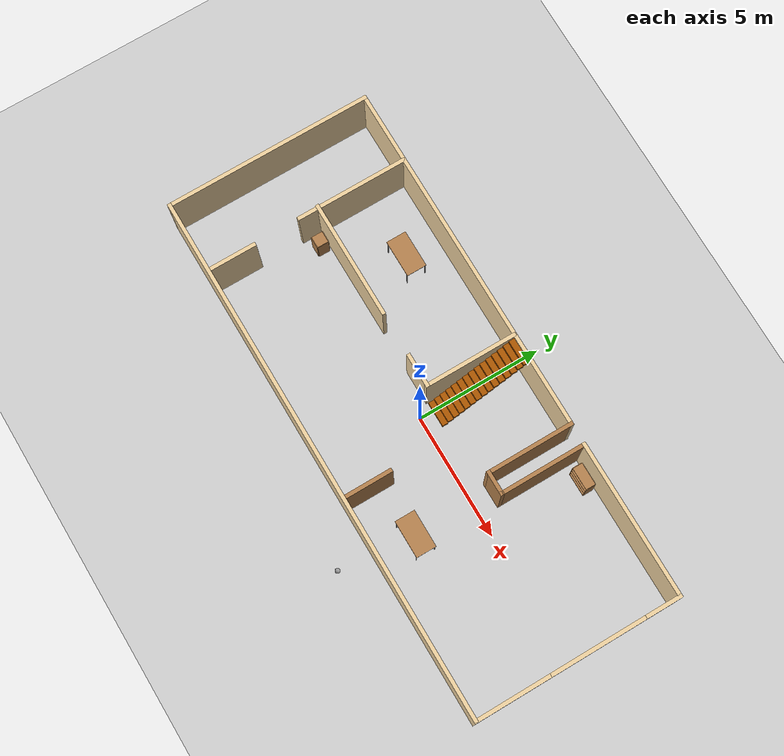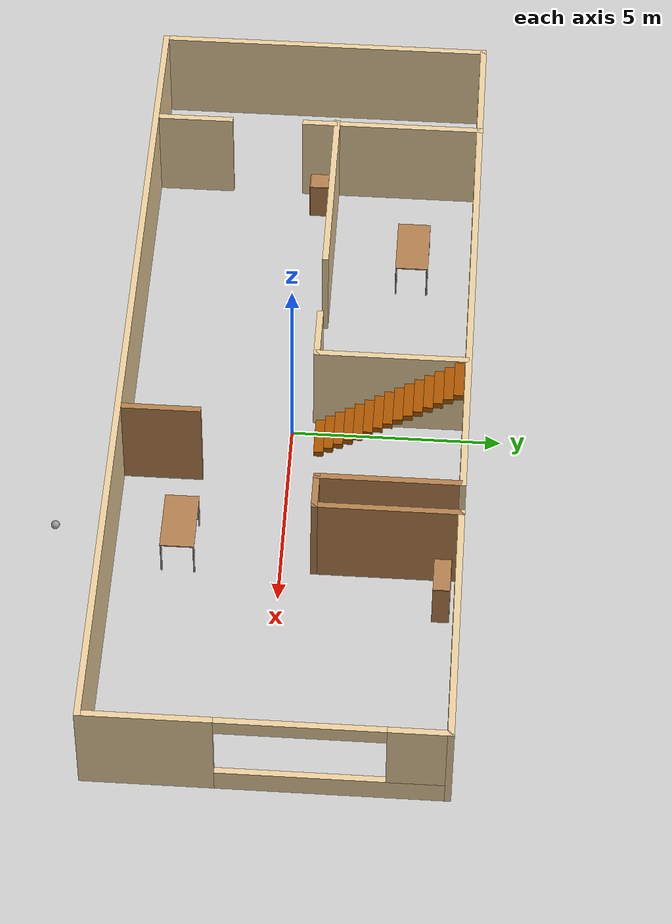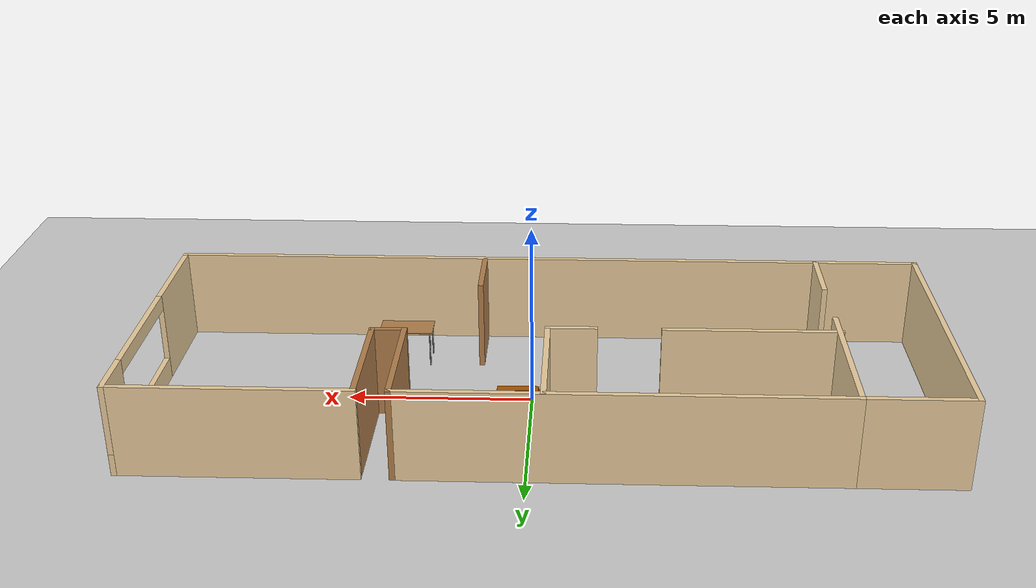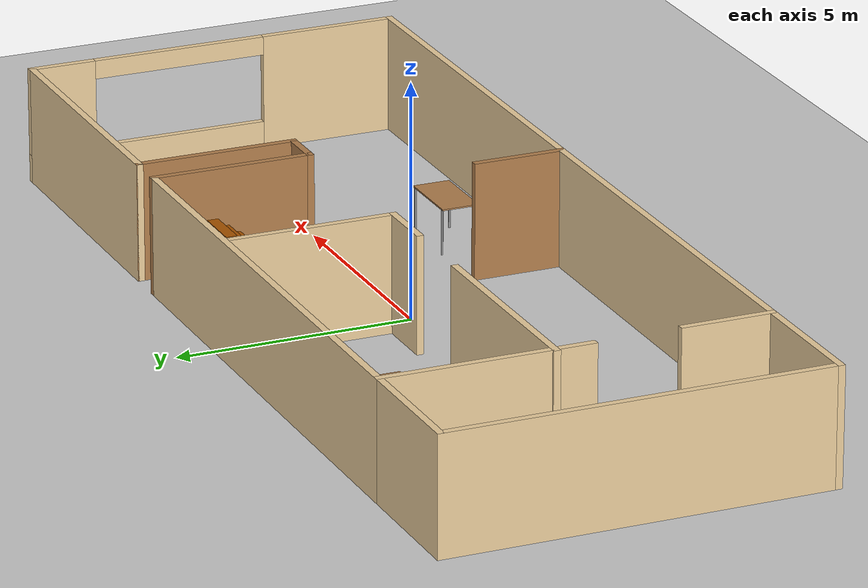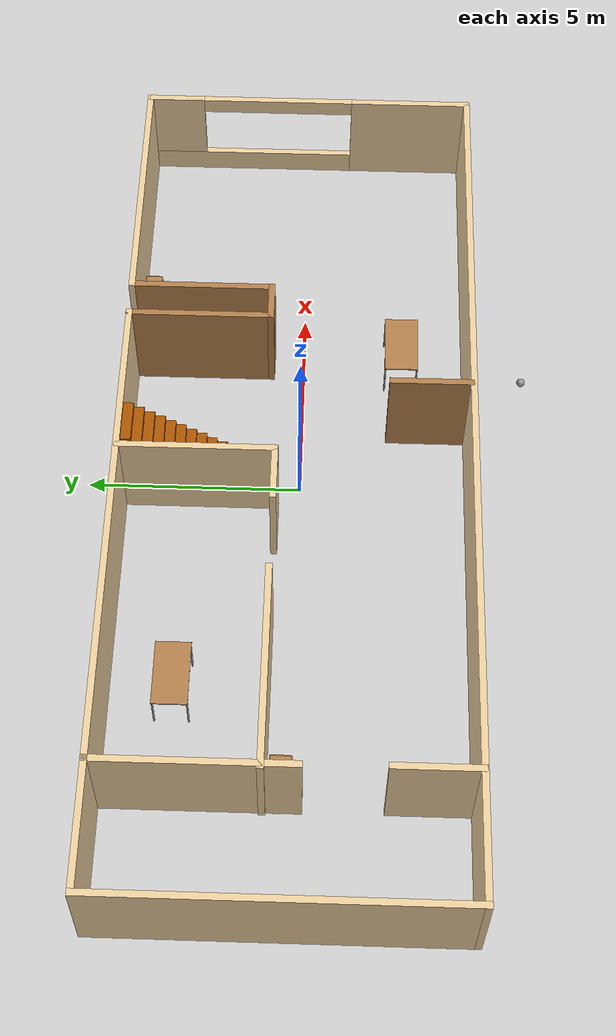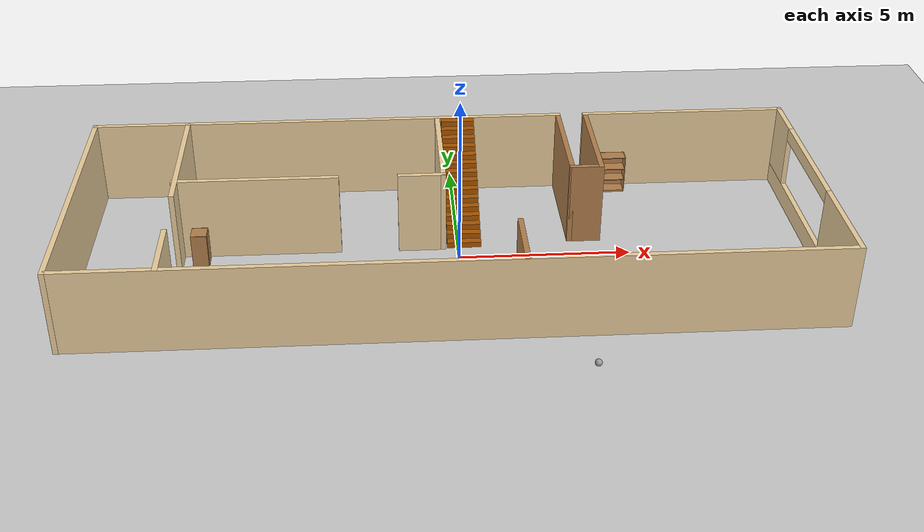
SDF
<sdf version="1.6">
 <world name="default">
  <light name="sun" type="directional">
   <pose>0 0 10 0 -0 0</pose>
   <diffuse>0.8 0.8 0.8 1</diffuse>
   <specular>0.2 0.2 0.2 1</specular>
   <attenuation>
    <range>1000</range>
    <constant>0.9</constant>
    <linear>0.01</linear>
    <quadratic>0.001</quadratic>
   </attenuation>
   <direction>-0.5 0.1 -0.9</direction>
  </light>
  <model name="ground_plane">
   <static>1</static>
   <link name="link">
    <collision name="collision">
     <geometry><plane><normal>0 0 1</normal><size>100 100</size></plane></geometry>
     <surface>
      <contact><collide_bitmask>65535</collide_bitmask></contact>
      <friction><ode><mu>100</mu><mu2>50</mu2></ode></friction>
     </surface>
    </collision>
    <visual name="visual">
     <cast_shadows>0</cast_shadows>
     <geometry><plane><normal>0 0 1</normal><size>100 100</size></plane></geometry>
     <material>
      <script><uri>file://media/materials/scripts/gazebo.material</uri><name>Gazebo/Grey</name></script>
     </material>
    </visual>
   </link>
  </model>
  <gravity>0 0 -9.8</gravity>
  <magnetic_field>6e-06 2.3e-05 -4.2e-05</magnetic_field>
  <atmosphere type="adiabatic"/>
  <physics name="default_physics" default="0" type="ode">
   <max_step_size>0.001</max_step_size>
   <real_time_factor>1</real_time_factor>
   <real_time_update_rate>1000</real_time_update_rate>
  </physics>
  <scene><ambient>0.4 0.4 0.4 1</ambient><background>0.7 0.7 0.7 1</background><shadows>1</shadows></scene>
  <spherical_coordinates>
   <surface_model>EARTH_WGS84</surface_model>
   <latitude_deg>0</latitude_deg>
   <longitude_deg>0</longitude_deg>
   <elevation>0</elevation>
   <heading_deg>0</heading_deg>
  </spherical_coordinates>
  <model name="HomeStruc">
   <pose>-0.297573 0.087769 0 0 -0 0</pose>
   <link name="Stairs_0">
    <visual name="Stairs_0_Visual_0">
     <pose>0.475786 0.5785 0.083333 0 -0 -3.14159</pose>
     <geometry><box><size>1 0.233333 0.166667</size></box></geometry>
     <material>
      <script><uri>file://media/materials/scripts/gazebo.material</uri><name>Gazebo/Grey</name></script>
      <ambient>0.666667 0.333333 0 1</ambient>
     </material>
     <meta><layer>0</layer></meta>
    </visual>
    <collision name="Stairs_0_Collision_0">
     <geometry><box><size>1 0.233333 0.166667</size></box></geometry>
     <pose>0.475786 0.5785 0.083333 0 -0 -3.14159</pose>
    </collision>
    <visual name="Stairs_0_Visual_1">
     <pose>0.475786 0.811833 0.25 0 -0 -3.14159</pose>
     <geometry><box><size>1 0.233333 0.166667</size></box></geometry>
     <material>
      <script><uri>file://media/materials/scripts/gazebo.material</uri><name>Gazebo/Grey</name></script>
      <ambient>0.666667 0.333333 0 1</ambient>
     </material>
     <meta><layer>0</layer></meta>
    </visual>
    <collision name="Stairs_0_Collision_1">
     <geometry><box><size>1 0.233333 0.166667</size></box></geometry>
     <pose>0.475786 0.811833 0.25 0 -0 -3.14159</pose>
    </collision>
    <visual name="Stairs_0_Visual_2">
     <pose>0.475786 1.04517 0.416667 0 -0 -3.14159</pose>
     <geometry><box><size>1 0.233333 0.166667</size></box></geometry>
     <material>
      <script><uri>file://media/materials/scripts/gazebo.material</uri><name>Gazebo/Grey</name></script>
      <ambient>0.666667 0.333333 0 1</ambient>
     </material>
     <meta><layer>0</layer></meta>
    </visual>
    <collision name="Stairs_0_Collision_2">
     <geometry><box><size>1 0.233333 0.166667</size></box></geometry>
     <pose>0.475786 1.04517 0.416667 0 -0 -3.14159</pose>
    </collision>
    <visual name="Stairs_0_Visual_3">
     <pose>0.475786 1.2785 0.583333 0 -0 -3.14159</pose>
     <geometry><box><size>1 0.233333 0.166667</size></box></geometry>
     <material>
      <script><uri>file://media/materials/scripts/gazebo.material</uri><name>Gazebo/Grey</name></script>
      <ambient>0.666667 0.333333 0 1</ambient>
     </material>
     <meta><layer>0</layer></meta>
    </visual>
    <collision name="Stairs_0_Collision_3">
     <geometry><box><size>1 0.233333 0.166667</size></box></geometry>
     <pose>0.475786 1.2785 0.583333 0 -0 -3.14159</pose>
    </collision>
    <visual name="Stairs_0_Visual_4">
     <pose>0.475786 1.51183 0.75 0 -0 -3.14159</pose>
     <geometry><box><size>1 0.233333 0.166667</size></box></geometry>
     <material>
      <script><uri>file://media/materials/scripts/gazebo.material</uri><name>Gazebo/Grey</name></script>
      <ambient>0.666667 0.333333 0 1</ambient>
     </material>
     <meta><layer>0</layer></meta>
    </visual>
    <collision name="Stairs_0_Collision_4">
     <geometry><box><size>1 0.233333 0.166667</size></box></geometry>
     <pose>0.475786 1.51183 0.75 0 -0 -3.14159</pose>
    </collision>
    <visual name="Stairs_0_Visual_5">
     <pose>0.475786 1.74517 0.916667 0 -0 -3.14159</pose>
     <geometry><box><size>1 0.233333 0.166667</size></box></geometry>
     <material>
      <script><uri>file://media/materials/scripts/gazebo.material</uri><name>Gazebo/Grey</name></script>
      <ambient>0.666667 0.333333 0 1</ambient>
     </material>
     <meta><layer>0</layer></meta>
    </visual>
    <collision name="Stairs_0_Collision_5">
     <geometry><box><size>1 0.233333 0.166667</size></box></geometry>
     <pose>0.475786 1.74517 0.916667 0 -0 -3.14159</pose>
    </collision>
    <visual name="Stairs_0_Visual_6">
     <pose>0.475786 1.9785 1.08333 0 -0 -3.14159</pose>
     <geometry><box><size>1 0.233333 0.166667</size></box></geometry>
     <material>
      <script><uri>file://media/materials/scripts/gazebo.material</uri><name>Gazebo/Grey</name></script>
      <ambient>0.666667 0.333333 0 1</ambient>
     </material>
     <meta><layer>0</layer></meta>
    </visual>
    <collision name="Stairs_0_Collision_6">
     <geometry><box><size>1 0.233333 0.166667</size></box></geometry>
     <pose>0.475786 1.9785 1.08333 0 -0 -3.14159</pose>
    </collision>
    <visual name="Stairs_0_Visual_7">
     <pose>0.475786 2.21183 1.25 0 -0 -3.14159</pose>
     <geometry><box><size>1 0.233333 0.166667</size></box></geometry>
     <material>
      <script><uri>file://media/materials/scripts/gazebo.material</uri><name>Gazebo/Grey</name></script>
      <ambient>0.666667 0.333333 0 1</ambient>
     </material>
     <meta><layer>0</layer></meta>
    </visual>
    <collision name="Stairs_0_Collision_7">
     <geometry><box><size>1 0.233333 0.166667</size></box></geometry>
     <pose>0.475786 2.21183 1.25 0 -0 -3.14159</pose>
    </collision>
    <visual name="Stairs_0_Visual_8">
     <pose>0.475786 2.44517 1.41667 0 -0 -3.14159</pose>
     <geometry><box><size>1 0.233333 0.166667</size></box></geometry>
     <material>
      <script><uri>file://media/materials/scripts/gazebo.material</uri><name>Gazebo/Grey</name></script>
      <ambient>0.666667 0.333333 0 1</ambient>
     </material>
     <meta><layer>0</layer></meta>
    </visual>
    <collision name="Stairs_0_Collision_8">
     <geometry><box><size>1 0.233333 0.166667</size></box></geometry>
     <pose>0.475786 2.44517 1.41667 0 -0 -3.14159</pose>
    </collision>
    <visual name="Stairs_0_Visual_9">
     <pose>0.475786 2.6785 1.58333 0 -0 -3.14159</pose>
     <geometry><box><size>1 0.233333 0.166667</size></box></geometry>
     <material>
      <script><uri>file://media/materials/scripts/gazebo.material</uri><name>Gazebo/Grey</name></script>
      <ambient>0.666667 0.333333 0 1</ambient>
     </material>
     <meta><layer>0</layer></meta>
    </visual>
    <collision name="Stairs_0_Collision_9">
     <geometry><box><size>1 0.233333 0.166667</size></box></geometry>
     <pose>0.475786 2.6785 1.58333 0 -0 -3.14159</pose>
    </collision>
    <visual name="Stairs_0_Visual_10">
     <pose>0.475786 2.91183 1.75 0 -0 -3.14159</pose>
     <geometry><box><size>1 0.233333 0.166667</size></box></geometry>
     <material>
      <script><uri>file://media/materials/scripts/gazebo.material</uri><name>Gazebo/Grey</name></script>
      <ambient>0.666667 0.333333 0 1</ambient>
     </material>
     <meta><layer>0</layer></meta>
    </visual>
    <collision name="Stairs_0_Collision_10">
     <geometry><box><size>1 0.233333 0.166667</size></box></geometry>
     <pose>0.475786 2.91183 1.75 0 -0 -3.14159</pose>
    </collision>
    <visual name="Stairs_0_Visual_11">
     <pose>0.475786 3.14517 1.91667 0 -0 -3.14159</pose>
     <geometry><box><size>1 0.233333 0.166667</size></box></geometry>
     <material>
      <script><uri>file://media/materials/scripts/gazebo.material</uri><name>Gazebo/Grey</name></script>
      <ambient>0.666667 0.333333 0 1</ambient>
     </material>
     <meta><layer>0</layer></meta>
    </visual>
    <collision name="Stairs_0_Collision_11">
     <geometry><box><size>1 0.233333 0.166667</size></box></geometry>
     <pose>0.475786 3.14517 1.91667 0 -0 -3.14159</pose>
    </collision>
    <visual name="Stairs_0_Visual_12">
     <pose>0.475786 3.3785 2.08333 0 -0 -3.14159</pose>
     <geometry><box><size>1 0.233333 0.166667</size></box></geometry>
     <material>
      <script><uri>file://media/materials/scripts/gazebo.material</uri><name>Gazebo/Grey</name></script>
      <ambient>0.666667 0.333333 0 1</ambient>
     </material>
     <meta><layer>0</layer></meta>
    </visual>
    <collision name="Stairs_0_Collision_12">
     <geometry><box><size>1 0.233333 0.166667</size></box></geometry>
     <pose>0.475786 3.3785 2.08333 0 -0 -3.14159</pose>
    </collision>
    <visual name="Stairs_0_Visual_13">
     <pose>0.475786 3.61183 2.25 0 -0 -3.14159</pose>
     <geometry><box><size>1 0.233333 0.166667</size></box></geometry>
     <material>
      <script><uri>file://media/materials/scripts/gazebo.material</uri><name>Gazebo/Grey</name></script>
      <ambient>0.666667 0.333333 0 1</ambient>
     </material>
     <meta><layer>0</layer></meta>
    </visual>
    <collision name="Stairs_0_Collision_13">
     <geometry><box><size>1 0.233333 0.166667</size></box></geometry>
     <pose>0.475786 3.61183 2.25 0 -0 -3.14159</pose>
    </collision>
    <visual name="Stairs_0_Visual_14">
     <pose>0.475786 3.84517 2.41667 0 -0 -3.14159</pose>
     <geometry><box><size>1 0.233333 0.166667</size></box></geometry>
     <material>
      <script><uri>file://media/materials/scripts/gazebo.material</uri><name>Gazebo/Grey</name></script>
      <ambient>0.666667 0.333333 0 1</ambient>
     </material>
     <meta><layer>0</layer></meta>
    </visual>
    <collision name="Stairs_0_Collision_14">
     <geometry><box><size>1 0.233333 0.166667</size></box></geometry>
     <pose>0.475786 3.84517 2.41667 0 -0 -3.14159</pose>
    </collision>
   </link>
   <link name="Wall_0">
    <pose>10.55 0 0 0 -0 1.5708</pose>
    <visual name="Wall_0_Visual_0">
     <pose>-2.61815 0 1.25 0 -0 0</pose>
     <geometry><box><size>3.0137 0.15 2.5</size></box></geometry>
     <material>
      <script><uri>file://media/materials/scripts/gazebo.material</uri><name>Gazebo/Grey</name></script>
      <ambient>0.921569 0.807843 0.615686 1</ambient>
     </material>
     <meta><layer>0</layer></meta>
    </visual>
    <collision name="Wall_0_Collision_0">
     <geometry><box><size>3.0137 0.15 2.5</size></box></geometry>
     <pose>-2.61815 0 1.25 0 -0 0</pose>
    </collision>
    <visual name="Wall_0_Visual_1">
     <pose>1.50685 0 0.3 0 -0 0</pose>
     <geometry><box><size>5.2363 0.15 0.6</size></box></geometry>
     <material>
      <script><uri>file://media/materials/scripts/gazebo.material</uri><name>Gazebo/Grey</name></script>
      <ambient>0.921569 0.807843 0.615686 1</ambient>
     </material>
     <meta><layer>0</layer></meta>
    </visual>
    <collision name="Wall_0_Collision_1">
     <geometry><box><size>5.2363 0.15 0.6</size></box></geometry>
     <pose>1.50685 0 0.3 0 -0 0</pose>
    </collision>
    <visual name="Wall_0_Visual_2">
     <pose>3.39785 0 1.55 0 -0 0</pose>
     <geometry><box><size>1.4543 0.15 1.9</size></box></geometry>
     <material>
      <script><uri>file://media/materials/scripts/gazebo.material</uri><name>Gazebo/Grey</name></script>
      <ambient>0.921569 0.807843 0.615686 1</ambient>
     </material>
     <meta><layer>0</layer></meta>
    </visual>
    <collision name="Wall_0_Collision_2">
     <geometry><box><size>1.4543 0.15 1.9</size></box></geometry>
     <pose>3.39785 0 1.55 0 -0 0</pose>
    </collision>
    <visual name="Wall_0_Visual_3">
     <pose>0.779703 0 2.3 0 -0 0</pose>
     <geometry><box><size>3.782 0.15 0.4</size></box></geometry>
     <material>
      <script><uri>file://media/materials/scripts/gazebo.material</uri><name>Gazebo/Grey</name></script>
      <ambient>0.921569 0.807843 0.615686 1</ambient>
     </material>
     <meta><layer>0</layer></meta>
    </visual>
    <collision name="Wall_0_Collision_3">
     <geometry><box><size>3.782 0.15 0.4</size></box></geometry>
     <pose>0.779703 0 2.3 0 -0 0</pose>
    </collision>
   </link>
   <link name="Wall_1">
    <collision name="Wall_1_Collision">
     <geometry><box><size>6.25 0.15 2.5</size></box></geometry>
     <pose>0 0 1.25 0 -0 0</pose>
    </collision>
    <visual name="Wall_1_Visual">
     <pose>0 0 1.25 0 -0 0</pose>
     <geometry><box><size>6.25 0.15 2.5</size></box></geometry>
     <material>
      <script><uri>file://media/materials/scripts/gazebo.material</uri><name>Gazebo/Grey</name></script>
      <ambient>0.921569 0.807843 0.615686 1</ambient>
     </material>
     <meta><layer>0</layer></meta>
    </visual>
    <pose>7.5 4.05 0 0 -0 3.14159</pose>
   </link>
   <link name="Wall_12">
    <collision name="Wall_12_Collision">
     <geometry><box><size>2.95 0.15 2.5</size></box></geometry>
     <pose>0 0 1.25 0 -0 0</pose>
    </collision>
    <visual name="Wall_12_Visual">
     <pose>0 0 1.25 0 -0 0</pose>
     <geometry><box><size>2.95 0.15 2.5</size></box></geometry>
     <material>
      <script><uri>file://media/materials/scripts/gazebo.material</uri><name>Gazebo/Grey</name></script>
      <ambient>0.921569 0.807843 0.615686 1</ambient>
     </material>
     <meta><layer>0</layer></meta>
    </visual>
    <pose>-9.15 4.05 0 0 -0 0</pose>
   </link>
   <link name="Wall_15">
    <collision name="Wall_15_Collision">
     <geometry><box><size>2 0.15 2.5</size></box></geometry>
     <pose>0 0 1.25 0 -0 0</pose>
    </collision>
    <visual name="Wall_15_Visual">
     <pose>0 0 1.25 0 -0 0</pose>
     <geometry><box><size>2 0.15 2.5</size></box></geometry>
     <material>
      <script><uri>file://media/materials/scripts/gazebo.material</uri><name>Gazebo/Grey</name></script>
      <ambient>0.921569 0.807843 0.615686 1</ambient>
     </material>
     <meta><layer>0</layer></meta>
    </visual>
    <pose>-7.72149 -3.11969 0 0 0 -1.5708</pose>
   </link>
   <link name="Wall_17">
    <collision name="Wall_17_Collision">
     <geometry><box><size>4.75 0.15 2.5</size></box></geometry>
     <pose>0 0 1.25 0 -0 0</pose>
    </collision>
    <visual name="Wall_17_Visual">
     <pose>0 0 1.25 0 -0 0</pose>
     <geometry><box><size>4.75 0.15 2.5</size></box></geometry>
     <material>
      <script><uri>file://media/materials/scripts/gazebo.material</uri><name>Gazebo/Grey</name></script>
      <ambient>0.921569 0.807843 0.615686 1</ambient>
     </material>
     <meta><layer>0</layer></meta>
    </visual>
    <pose>-5.49631 0.482383 0 0 -0 0</pose>
   </link>
   <link name="Wall_19">
    <collision name="Wall_19_Collision">
     <geometry><box><size>1.38611 0.15 2.5</size></box></geometry>
     <pose>0 0 1.25 0 -0 0</pose>
    </collision>
    <visual name="Wall_19_Visual">
     <pose>0 0 1.25 0 -0 0</pose>
     <geometry><box><size>1.38611 0.15 2.5</size></box></geometry>
     <material>
      <script><uri>file://media/materials/scripts/gazebo.material</uri><name>Gazebo/Grey</name></script>
      <ambient>0.921569 0.807843 0.615686 1</ambient>
     </material>
     <meta><layer>0</layer></meta>
    </visual>
    <pose>-0.757463 0.466504 0 0 -0 0</pose>
   </link>
   <link name="Wall_2">
    <collision name="Wall_2_Collision">
     <geometry><box><size>3.5 0.15 2.5</size></box></geometry>
     <pose>0 0 1.25 0 -0 0</pose>
    </collision>
    <visual name="Wall_2_Visual">
     <pose>0 0 1.25 0 -0 0</pose>
     <geometry><box><size>3.5 0.15 2.5</size></box></geometry>
     <material>
      <script><uri>file://media/materials/scripts/gazebo.material</uri><name>Gazebo/Wood</name></script>
      <ambient>0.921569 0.807843 0.615686 1</ambient>
     </material>
     <meta><layer>0</layer></meta>
    </visual>
    <pose>4.45 2.375 0 0 0 -1.5708</pose>
   </link>
   <link name="Wall_20">
    <collision name="Wall_20_Collision">
     <geometry><box><size>3.7 0.15 2.5</size></box></geometry>
     <pose>0 0 1.25 0 -0 0</pose>
    </collision>
    <visual name="Wall_20_Visual">
     <pose>0 0 1.25 0 -0 0</pose>
     <geometry><box><size>3.7 0.15 2.5</size></box></geometry>
     <material>
      <script><uri>file://media/materials/scripts/gazebo.material</uri><name>Gazebo/Grey</name></script>
      <ambient>0.921569 0.807843 0.615686 1</ambient>
     </material>
     <meta><layer>0</layer></meta>
    </visual>
    <pose>-0.13941 2.2415 0 0 -0 1.5708</pose>
   </link>
   <link name="Wall_22">
    <collision name="Wall_22_Collision">
     <geometry><box><size>2 0.15 2.5</size></box></geometry>
     <pose>0 0 1.25 0 -0 0</pose>
    </collision>
    <visual name="Wall_22_Visual">
     <pose>0 0 1.25 0 -0 0</pose>
     <geometry><box><size>2 0.15 2.5</size></box></geometry>
     <material>
      <script><uri>file://media/materials/scripts/gazebo.material</uri><name>Gazebo/Wood</name></script>
      <ambient>0.921569 0.807843 0.615686 1</ambient>
     </material>
     <meta><layer>0</layer></meta>
    </visual>
    <pose>1.80328 -3.10843 0 0 -0 1.5708</pose>
   </link>
   <link name="Wall_3">
    <collision name="Wall_3_Collision">
     <geometry><box><size>1 0.15 2.5</size></box></geometry>
     <pose>0 0 1.25 0 -0 0</pose>
    </collision>
    <visual name="Wall_3_Visual">
     <pose>0 0 1.25 0 -0 0</pose>
     <geometry><box><size>1 0.15 2.5</size></box></geometry>
     <material>
      <script><uri>file://media/materials/scripts/gazebo.material</uri><name>Gazebo/Wood</name></script>
      <ambient>0.921569 0.807843 0.615686 1</ambient>
     </material>
     <meta><layer>0</layer></meta>
    </visual>
    <pose>4.025 0.7 0 0 -0 3.14159</pose>
   </link>
   <link name="Wall_4">
    <collision name="Wall_4_Collision">
     <geometry><box><size>3.5 0.15 2.5</size></box></geometry>
     <pose>0 0 1.25 0 -0 0</pose>
    </collision>
    <visual name="Wall_4_Visual">
     <pose>0 0 1.25 0 -0 0</pose>
     <geometry><box><size>3.5 0.15 2.5</size></box></geometry>
     <material>
      <script><uri>file://media/materials/scripts/gazebo.material</uri><name>Gazebo/Wood</name></script>
      <ambient>0.921569 0.807843 0.615686 1</ambient>
     </material>
     <meta><layer>0</layer></meta>
    </visual>
    <pose>3.6 2.375 0 0 -0 1.5708</pose>
   </link>
   <link name="Wall_5">
    <collision name="Wall_5_Collision">
     <geometry><box><size>11.5 0.15 2.5</size></box></geometry>
     <pose>0 0 1.25 0 -0 0</pose>
    </collision>
    <visual name="Wall_5_Visual">
     <pose>0 0 1.25 0 -0 0</pose>
     <geometry><box><size>11.5 0.15 2.5</size></box></geometry>
     <material>
      <script><uri>file://media/materials/scripts/gazebo.material</uri><name>Gazebo/Grey</name></script>
      <ambient>0.921569 0.807843 0.615686 1</ambient>
     </material>
     <meta><layer>0</layer></meta>
    </visual>
    <pose>-2.075 4.05 0 0 -0 3.14159</pose>
   </link>
   <link name="Wall_6">
    <collision name="Wall_6_Collision">
     <geometry><box><size>4.5 0.15 2.5</size></box></geometry>
     <pose>0 0 1.25 0 -0 0</pose>
    </collision>
    <visual name="Wall_6_Visual">
     <pose>0 0 1.25 0 -0 0</pose>
     <geometry><box><size>4.5 0.15 2.5</size></box></geometry>
     <material>
      <script><uri>file://media/materials/scripts/gazebo.material</uri><name>Gazebo/Grey</name></script>
      <ambient>0.921569 0.807843 0.615686 1</ambient>
     </material>
     <meta><layer>0</layer></meta>
    </visual>
    <pose>-7.75 1.875 0 0 0 -1.5708</pose>
   </link>
   <link name="Wall_8">
    <collision name="Wall_8_Collision">
     <geometry><box><size>21.25 0.15 2.5</size></box></geometry>
     <pose>0 0 1.25 0 -0 0</pose>
    </collision>
    <visual name="Wall_8_Visual">
     <pose>0 0 1.25 0 -0 0</pose>
     <geometry><box><size>21.25 0.15 2.5</size></box></geometry>
     <material>
      <script><uri>file://media/materials/scripts/gazebo.material</uri><name>Gazebo/Grey</name></script>
      <ambient>0.921569 0.807843 0.615686 1</ambient>
     </material>
     <meta><layer>0</layer></meta>
    </visual>
    <pose>0 -4.05 0 0 -0 3.14159</pose>
   </link>
   <link name="Wall_9">
    <collision name="Wall_9_Collision">
     <geometry><box><size>8.25 0.15 2.5</size></box></geometry>
     <pose>0 0 1.25 0 -0 0</pose>
    </collision>
    <visual name="Wall_9_Visual">
     <pose>0 0 1.25 0 -0 0</pose>
     <geometry><box><size>8.25 0.15 2.5</size></box></geometry>
     <material>
      <script><uri>file://media/materials/scripts/gazebo.material</uri><name>Gazebo/Grey</name></script>
      <ambient>0.921569 0.807843 0.615686 1</ambient>
     </material>
     <meta><layer>0</layer></meta>
    </visual>
    <pose>-10.55 0 0 0 -0 1.5708</pose>
   </link>
   <static>1</static>
  </model>
  <model name="table">
   <static>1</static>
   <link name="link">
    <collision name="surface">
     <pose>0 0 1 0 -0 0</pose>
     <geometry><box><size>1.5 0.8 0.03</size></box></geometry>
     <surface><friction><ode><mu>0.6</mu><mu2>0.6</mu2></ode></friction></surface>
    </collision>
    <visual name="visual1">
     <pose>0 0 1 0 -0 0</pose>
     <geometry><box><size>1.5 0.8 0.03</size></box></geometry>
     <material>
      <script><uri>file://media/materials/scripts/gazebo.material</uri><name>Gazebo/Wood</name></script>
     </material>
    </visual>
    <collision name="front_left_leg">
     <pose>0.68 0.38 0.5 0 -0 0</pose>
     <geometry><cylinder><radius>0.02</radius><length>1</length></cylinder></geometry>
    </collision>
    <visual name="front_left_leg">
     <pose>0.68 0.38 0.5 0 -0 0</pose>
     <geometry><cylinder><radius>0.02</radius><length>1</length></cylinder></geometry>
     <material>
      <script><uri>file://media/materials/scripts/gazebo.material</uri><name>Gazebo/Grey</name></script>
     </material>
    </visual>
    <collision name="front_right_leg">
     <pose>0.68 -0.38 0.5 0 -0 0</pose>
     <geometry><cylinder><radius>0.02</radius><length>1</length></cylinder></geometry>
    </collision>
    <visual name="front_right_leg">
     <pose>0.68 -0.38 0.5 0 -0 0</pose>
     <geometry><cylinder><radius>0.02</radius><length>1</length></cylinder></geometry>
     <material>
      <script><uri>file://media/materials/scripts/gazebo.material</uri><name>Gazebo/Grey</name></script>
     </material>
    </visual>
    <collision name="back_right_leg">
     <pose>-0.68 -0.38 0.5 0 -0 0</pose>
     <geometry><cylinder><radius>0.02</radius><length>1</length></cylinder></geometry>
    </collision>
    <visual name="back_right_leg">
     <pose>-0.68 -0.38 0.5 0 -0 0</pose>
     <geometry><cylinder><radius>0.02</radius><length>1</length></cylinder></geometry>
     <material>
      <script><uri>file://media/materials/scripts/gazebo.material</uri><name>Gazebo/Grey</name></script>
     </material>
    </visual>
    <collision name="back_left_leg">
     <pose>-0.68 0.38 0.5 0 -0 0</pose>
     <geometry><cylinder><radius>0.02</radius><length>1</length></cylinder></geometry>
    </collision>
    <visual name="back_left_leg">
     <pose>-0.68 0.38 0.5 0 -0 0</pose>
     <geometry><cylinder><radius>0.02</radius><length>1</length></cylinder></geometry>
     <material>
      <script><uri>file://media/materials/scripts/gazebo.material</uri><name>Gazebo/Grey</name></script>
     </material>
    </visual>
   </link>
   <pose>3.65492 -2.36516 0 0 -0 0</pose>
  </model>
  <model name="bookshelf">
   <static>1</static>
   <link name="link">
    <inertial><mass>1</mass></inertial>
    <collision name="back">
     <pose>0 0.005 0.6 0 -0 0</pose>
     <geometry><box><size>0.9 0.01 1.2</size></box></geometry>
    </collision>
    <visual name="visual1">
     <pose>0 0.005 0.6 0 -0 0</pose>
     <geometry><box><size>0.9 0.01 1.2</size></box></geometry>
     <material>
      <script><uri>file://media/materials/scripts/gazebo.material</uri><name>Gazebo/Wood</name></script>
     </material>
    </visual>
    <collision name="left_side">
     <pose>0.45 -0.195 0.6 0 -0 0</pose>
     <geometry><box><size>0.02 0.4 1.2</size></box></geometry>
    </collision>
    <visual name="visual2">
     <pose>0.45 -0.195 0.6 0 -0 0</pose>
     <geometry><box><size>0.02 0.4 1.2</size></box></geometry>
     <material>
      <script><uri>file://media/materials/scripts/gazebo.material</uri><name>Gazebo/Wood</name></script>
     </material>
    </visual>
    <collision name="right_side">
     <pose>-0.45 -0.195 0.6 0 -0 0</pose>
     <geometry><box><size>0.02 0.4 1.2</size></box></geometry>
    </collision>
    <visual name="visual3">
     <pose>-0.45 -0.195 0.6 0 -0 0</pose>
     <geometry><box><size>0.02 0.4 1.2</size></box></geometry>
     <material>
      <script><uri>file://media/materials/scripts/gazebo.material</uri><name>Gazebo/Wood</name></script>
     </material>
    </visual>
    <collision name="bottom">
     <pose>0 -0.195 0.03 0 -0 0</pose>
     <geometry><box><size>0.88 0.4 0.06</size></box></geometry>
    </collision>
    <visual name="visual4">
     <pose>0 -0.195 0.03 0 -0 0</pose>
     <geometry><box><size>0.88 0.4 0.06</size></box></geometry>
     <material>
      <script><uri>file://media/materials/scripts/gazebo.material</uri><name>Gazebo/Wood</name></script>
     </material>
    </visual>
    <collision name="top">
     <pose>0 -0.195 1.19 0 -0 0</pose>
     <geometry><box><size>0.88 0.4 0.02</size></box></geometry>
    </collision>
    <visual name="visual5">
     <pose>0 -0.195 1.19 0 -0 0</pose>
     <geometry><box><size>0.88 0.4 0.02</size></box></geometry>
     <material>
      <script><uri>file://media/materials/scripts/gazebo.material</uri><name>Gazebo/Wood</name></script>
     </material>
    </visual>
    <collision name="low_shelf">
     <pose>0 -0.195 0.43 0 -0 0</pose>
     <geometry><box><size>0.88 0.4 0.02</size></box></geometry>
    </collision>
    <visual name="visual6">
     <pose>0 -0.195 0.43 0 -0 0</pose>
     <geometry><box><size>0.88 0.4 0.02</size></box></geometry>
     <material>
      <script><uri>file://media/materials/scripts/gazebo.material</uri><name>Gazebo/Wood</name></script>
     </material>
    </visual>
    <collision name="high_shelf">
     <pose>0 -0.195 0.8 0 -0 0</pose>
     <geometry><box><size>0.88 0.4 0.02</size></box></geometry>
    </collision>
    <visual name="visual7">
     <pose>0 -0.195 0.8 0 -0 0</pose>
     <geometry><box><size>0.88 0.4 0.02</size></box></geometry>
     <material>
      <script><uri>file://media/materials/scripts/gazebo.material</uri><name>Gazebo/Wood</name></script>
     </material>
    </visual>
   </link>
   <pose>4.9691 3.96416 0 0 -0 0</pose>
  </model>
  <model name="cabinet">
   <static>1</static>
   <link name="cabinet_bottom_plate">
    <inertial>
     <pose>0 0 -1 0 -0 0</pose>
     <inertia><ixx>2.05</ixx><ixy>0</ixy><ixz>0</ixz><iyy>2.05</iyy><iyz>0</iyz><izz>2.05</izz></inertia>
     <mass>25</mass>
    </inertial>
    <collision name="cabinet_bottom_plate_geom">
     <pose>0 0 0.01 0 -0 0</pose>
     <geometry><box><size>0.45 0.45 0.02</size></box></geometry>
    </collision>
    <visual name="cabinet_bottom_plate_geom_visual">
     <pose>0 0 0.01 0 -0 0</pose>
     <geometry><box><size>0.45 0.45 0.02</size></box></geometry>
     <material>
      <script><uri>file://media/materials/scripts/gazebo.material</uri><name>Gazebo/Wood</name></script>
     </material>
    </visual>
    <collision name="cabinet_bottom_plate_geom_cabinet_back_plate">
     <pose>0.235 0 0.51 0 -0 0</pose>
     <geometry><box><size>0.02 0.45 1.02</size></box></geometry>
    </collision>
    <visual name="cabinet_bottom_plate_geom_cabinet_back_plate_visual">
     <pose>0.235 0 0.51 0 -0 0</pose>
     <geometry><box><size>0.02 0.45 1.02</size></box></geometry>
     <material>
      <script><uri>file://media/materials/scripts/gazebo.material</uri><name>Gazebo/Wood</name></script>
     </material>
    </visual>
    <collision name="cabinet_bottom_plate_geom_cabinet_left_plate">
     <pose>0 0.235 0.51 0 -0 0</pose>
     <geometry><box><size>0.45 0.02 1.02</size></box></geometry>
    </collision>
    <visual name="cabinet_bottom_plate_geom_cabinet_left_plate_visual">
     <pose>0 0.235 0.51 0 -0 0</pose>
     <geometry><box><size>0.45 0.02 1.02</size></box></geometry>
     <material>
      <script><uri>file://media/materials/scripts/gazebo.material</uri><name>Gazebo/Wood</name></script>
     </material>
    </visual>
    <collision name="cabinet_bottom_plate_geom_cabinet_middle_plate">
     <pose>0 0 0.51 0 -0 0</pose>
     <geometry><box><size>0.45 0.45 0.02</size></box></geometry>
    </collision>
    <visual name="cabinet_bottom_plate_geom_cabinet_middle_plate_visual">
     <pose>0 0 0.51 0 -0 0</pose>
     <geometry><box><size>0.45 0.45 0.02</size></box></geometry>
     <material>
      <script><uri>file://media/materials/scripts/gazebo.material</uri><name>Gazebo/Wood</name></script>
     </material>
    </visual>
    <collision name="cabinet_bottom_plate_geom_cabinet_right_plate">
     <pose>0 -0.235 0.51 0 -0 0</pose>
     <geometry><box><size>0.45 0.02 1.02</size></box></geometry>
    </collision>
    <visual name="cabinet_bottom_plate_geom_cabinet_right_plate_visual">
     <pose>0 -0.235 0.51 0 -0 0</pose>
     <geometry><box><size>0.45 0.02 1.02</size></box></geometry>
     <material>
      <script><uri>file://media/materials/scripts/gazebo.material</uri><name>Gazebo/Wood</name></script>
     </material>
    </visual>
    <collision name="cabinet_bottom_plate_geom_cabinet_top_plate">
     <pose>0 0 1.01 0 -0 0</pose>
     <geometry><box><size>0.45 0.45 0.02</size></box></geometry>
    </collision>
    <visual name="cabinet_bottom_plate_geom_cabinet_top_plate_visual">
     <pose>0 0 1.01 0 -0 0</pose>
     <geometry><box><size>0.45 0.45 0.02</size></box></geometry>
     <material>
      <script><uri>file://media/materials/scripts/gazebo.material</uri><name>Gazebo/Wood</name></script>
     </material>
    </visual>
   </link>
   <pose>-7.4623 0.187128 0 0 -0 0</pose>
  </model>
  <model name="table_0">
   <static>1</static>
   <link name="link">
    <collision name="surface">
     <pose>0 0 1 0 -0 0</pose>
     <geometry><box><size>1.5 0.8 0.03</size></box></geometry>
     <surface><friction><ode><mu>0.6</mu><mu2>0.6</mu2></ode></friction></surface>
    </collision>
    <visual name="visual1">
     <pose>0 0 1 0 -0 0</pose>
     <geometry><box><size>1.5 0.8 0.03</size></box></geometry>
     <material>
      <script><uri>file://media/materials/scripts/gazebo.material</uri><name>Gazebo/Wood</name></script>
     </material>
    </visual>
    <collision name="front_left_leg">
     <pose>0.68 0.38 0.5 0 -0 0</pose>
     <geometry><cylinder><radius>0.02</radius><length>1</length></cylinder></geometry>
    </collision>
    <visual name="front_left_leg">
     <pose>0.68 0.38 0.5 0 -0 0</pose>
     <geometry><cylinder><radius>0.02</radius><length>1</length></cylinder></geometry>
     <material>
      <script><uri>file://media/materials/scripts/gazebo.material</uri><name>Gazebo/Grey</name></script>
     </material>
    </visual>
    <collision name="front_right_leg">
     <pose>0.68 -0.38 0.5 0 -0 0</pose>
     <geometry><cylinder><radius>0.02</radius><length>1</length></cylinder></geometry>
    </collision>
    <visual name="front_right_leg">
     <pose>0.68 -0.38 0.5 0 -0 0</pose>
     <geometry><cylinder><radius>0.02</radius><length>1</length></cylinder></geometry>
     <material>
      <script><uri>file://media/materials/scripts/gazebo.material</uri><name>Gazebo/Grey</name></script>
     </material>
    </visual>
    <collision name="back_right_leg">
     <pose>-0.68 -0.38 0.5 0 -0 0</pose>
     <geometry><cylinder><radius>0.02</radius><length>1</length></cylinder></geometry>
    </collision>
    <visual name="back_right_leg">
     <pose>-0.68 -0.38 0.5 0 -0 0</pose>
     <geometry><cylinder><radius>0.02</radius><length>1</length></cylinder></geometry>
     <material>
      <script><uri>file://media/materials/scripts/gazebo.material</uri><name>Gazebo/Grey</name></script>
     </material>
    </visual>
    <collision name="back_left_leg">
     <pose>-0.68 0.38 0.5 0 -0 0</pose>
     <geometry><cylinder><radius>0.02</radius><length>1</length></cylinder></geometry>
    </collision>
    <visual name="back_left_leg">
     <pose>-0.68 0.38 0.5 0 -0 0</pose>
     <geometry><cylinder><radius>0.02</radius><length>1</length></cylinder></geometry>
     <material>
      <script><uri>file://media/materials/scripts/gazebo.material</uri><name>Gazebo/Grey</name></script>
     </material>
    </visual>
   </link>
   <pose>-5.36902 2.63151 0 0 -0 0</pose>
  </model>
  <model name="my_ball">
   <link name="link_0">
    <inertial>
     <mass>1</mass>
     <inertia><ixx>0.1</ixx><ixy>0</ixy><ixz>0</ixz><iyy>0.1</iyy><iyz>0</iyz><izz>0.1</izz></inertia>
    </inertial>
    <visual name="visual">
     <geometry><sphere><radius>0.1</radius></sphere></geometry>
     <material>
      <lighting>1</lighting>
      <script><uri>file://media/materials/scripts/gazebo.material</uri><name>Gazebo/Grey</name></script>
      <shader type="pixel"><normal_map>__default__</normal_map></shader>
      <ambient>1 1 1 1</ambient>
      <diffuse>1 1 1 1</diffuse>
      <specular>1 1 1 1</specular>
      <emissive>1 1 1 1</emissive>
     </material>
    </visual>
    <collision name="collision">
     <geometry><sphere><radius>0.1</radius></sphere></geometry>
     <surface>
      <friction>
       <ode><mu>1</mu><mu2>1</mu2><fdir1>0 0 0</fdir1><slip1>0</slip1><slip2>0</slip2></ode>
       <torsional>
        <coefficient>1</coefficient>
        <patch_radius>0</patch_radius>
        <surface_radius>0</surface_radius>
        <use_patch_radius>1</use_patch_radius>
        <ode><slip>0</slip></ode>
       </torsional>
      </friction>
      <bounce><restitution_coefficient>0</restitution_coefficient><threshold>1e+06</threshold></bounce>
      <contact>
       <collide_without_contact>0</collide_without_contact>
       <collide_without_contact_bitmask>1</collide_without_contact_bitmask>
       <collide_bitmask>1</collide_bitmask>
       <ode>
        <soft_cfm>0</soft_cfm>
        <soft_erp>0.2</soft_erp>
        <kp>1e+13</kp>
        <kd>1</kd>
        <max_vel>0.01</max_vel>
        <min_depth>0</min_depth>
       </ode>
       <bullet>
        <split_impulse>1</split_impulse>
        <split_impulse_penetration_threshold>-0.01</split_impulse_penetration_threshold>
        <soft_cfm>0</soft_cfm>
        <soft_erp>0.2</soft_erp>
        <kp>1e+13</kp>
        <kd>1</kd>
       </bullet>
      </contact>
     </surface>
    </collision>
   </link>
   <static>0</static>
   <pose>3.25114 -5.34572 0.1 0 -0 0</pose>
  </model>
 </world>
</sdf>
